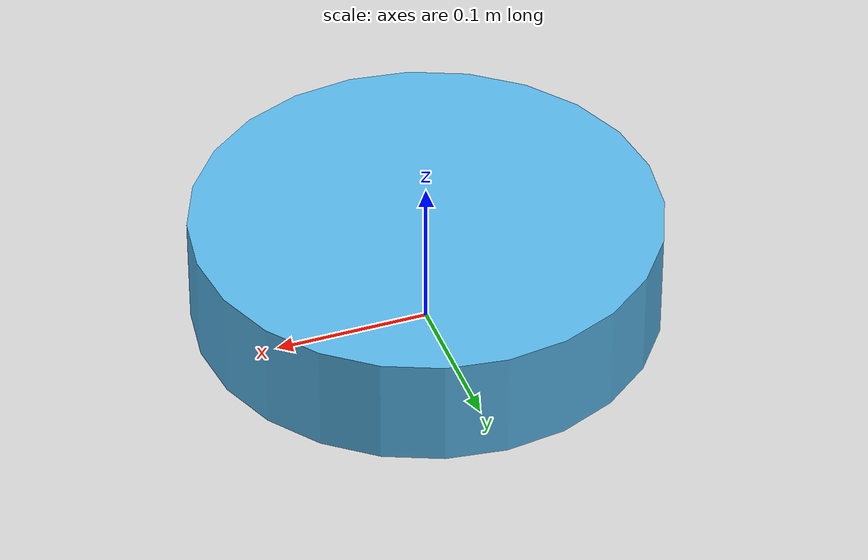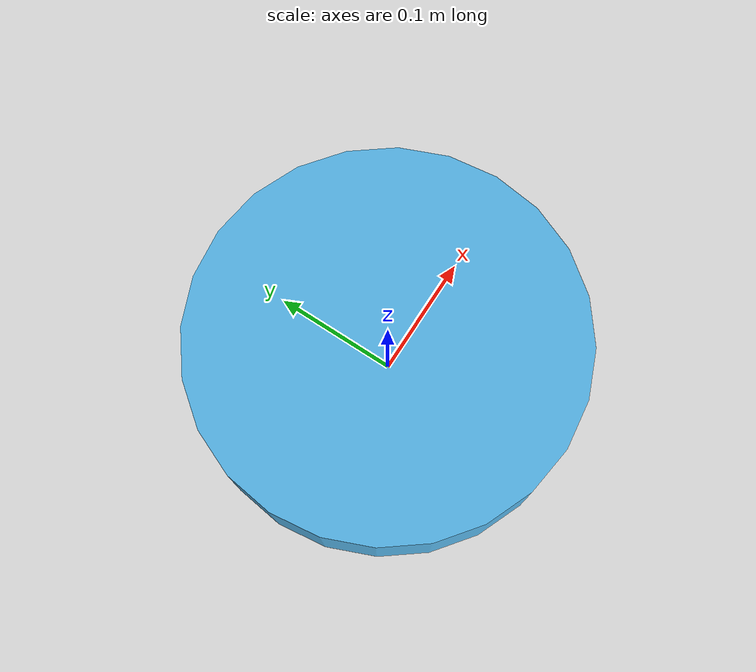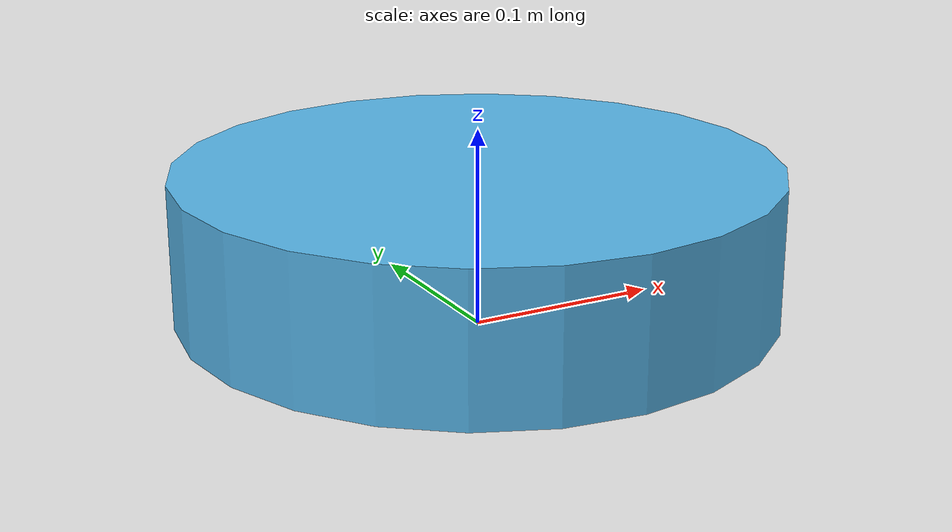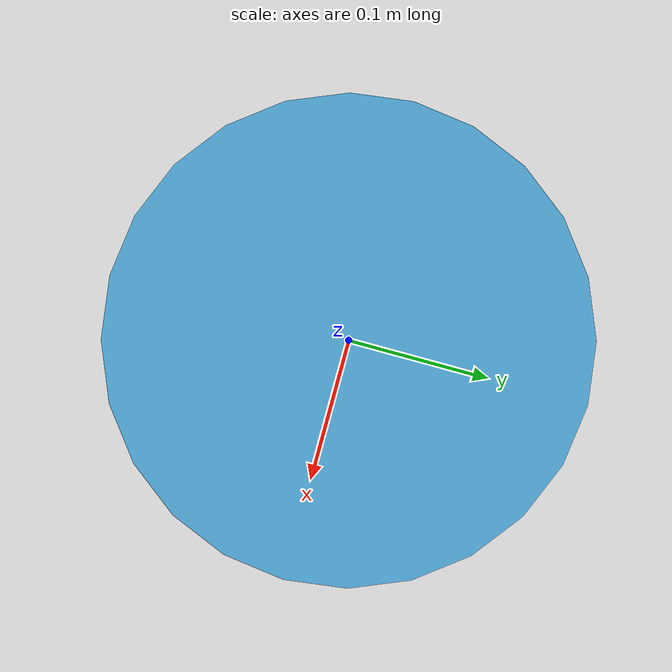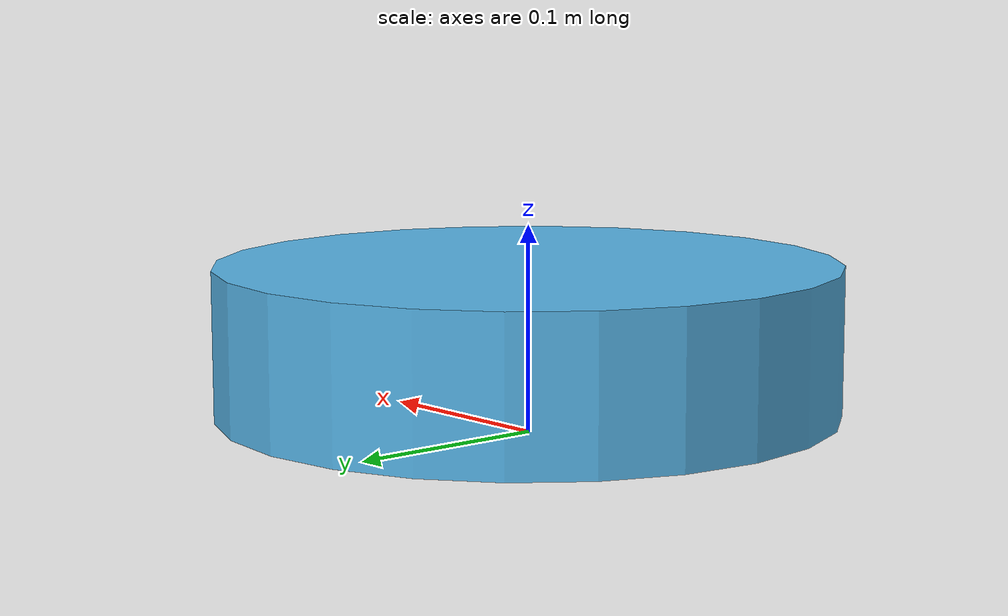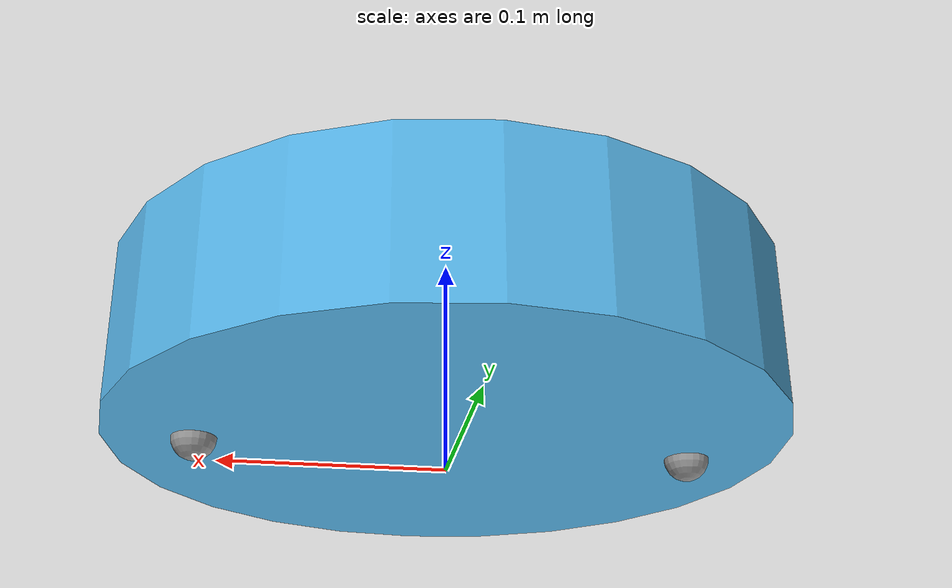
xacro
<?xml version="1.0" ?>
<robot name="body" xmlns:xacro="http://ros.org/wiki/xacro">
<link name="base_link" />

<xacro:property name="b_r" value="0.15"/>
<xacro:property name="b_l" value="0.072"/>
<xacro:property name="b_m" value="3.0"/>

<link name="body">
   <visual>
　　<geometry>
　　　<cylinder radius="${b_r}" length="${b_l}"/>
     </geometry>
  </visual>
   <collision>
　　<geometry>
　　　<cylinder radius="${b_r*0.95}" length="${b_l*0.95}"/>
     </geometry>
  </collision>
  <inertial>
     <origin xyz="0 0 0" rpy="0 0 0" />
     <mass value="${b_m}" />
     <!-- https://mathwords.net/entyukansei -->
    <inertia ixx="${1.0/2.0*b_m*(b_r*b_r)}" ixy="0"    ixz="0"
                 iyx="0"   iyy="${1.0/2.0*b_m*(b_r*b_r)}"  iyz="0"
		 izx="0"   izy="0"  izz="${1.0/2.0*b_m*(b_r*b_r)}" />
  </inertial>
</link>

<joint name="body_joint" type="fixed">
    <parent link="base_link" />
    <child link="body" />
    <origin xyz="0 0 0.0460" rpy="0 0 0" />
</joint>

<!--support wheel-->
  <joint name="ball_joint_1" type="fixed">
    <parent link="base_link"/>
    <child  link="ball_link_1"/>
    <origin xyz="0.110 0 0.01" rpy="0 0 0"/>
  </joint>
  <link name="ball_link_1">
    <visual>
      <origin xyz="0 0 0" rpy="0 0 0" />
      <geometry>
        <sphere radius="0.01" />
      </geometry>
    </visual>
    <collision>
      <origin xyz="0 0 0" rpy="0 0 0" />
      <geometry>
        <sphere radius="0.01" />
      </geometry>
    </collision>
  </link>
  <gazebo reference="ball_link_1">
    <material>Gazebo/Gray</material>
    <mu1 value="0.5" />
    <mu2 value="0.5" />
  </gazebo>

  <joint name="ball_joint_2" type="fixed">
    <parent link="base_link"/>
    <child  link="ball_link_2"/>
    <origin xyz="-0.110 0 0.01" rpy="0 0 0"/>
  </joint>
  <link name="ball_link_2">
    <visual>
      <origin xyz="0 0 0" rpy="0 0 0" />
      <geometry>
        <sphere radius="0.01" />
      </geometry>
    </visual>
    <collision>
      <origin xyz="0 0 0" rpy="0 0 0" />
      <geometry>
        <sphere radius="0.01" />
      </geometry>
    </collision>
  </link>
  <gazebo reference="ball_link_2">
    <material>Gazebo/Gray</material>
    <mu1 value="0.5" />
    <mu2 value="0.5" />
  </gazebo>

</robot>
